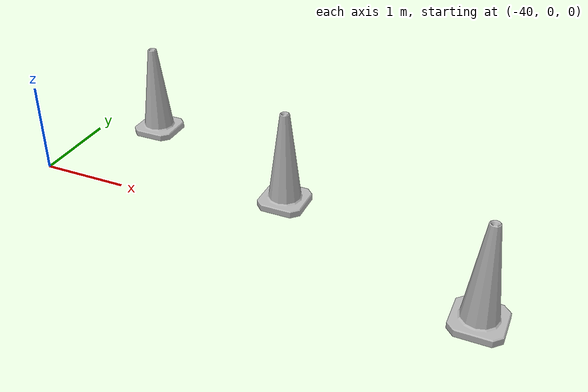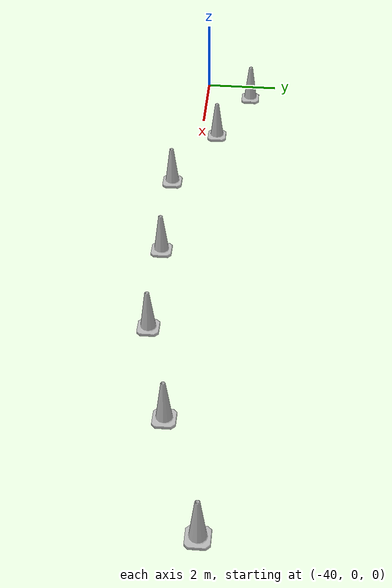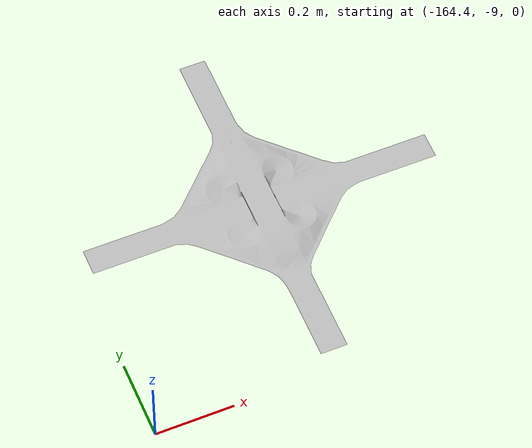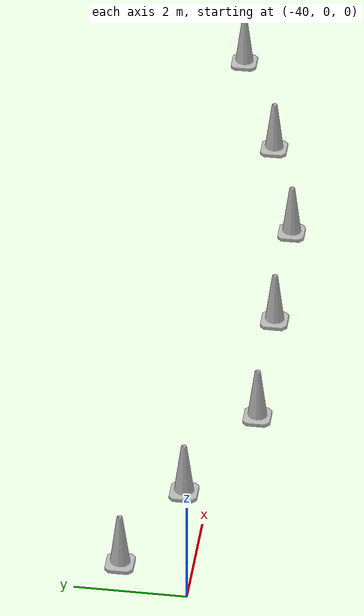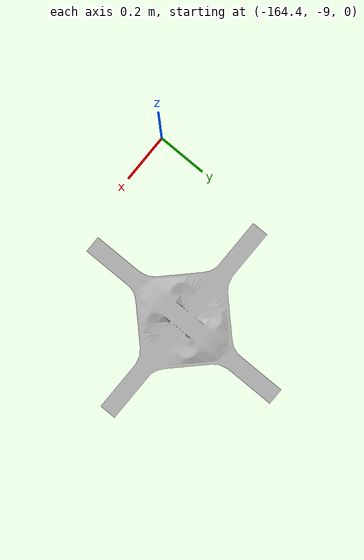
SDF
<sdf version="1.6">
 <world name="default">
  <light name="sun" type="directional">
   <pose>0 0 10 0 -0 0</pose>
   <diffuse>0.8 0.8 0.8 1</diffuse>
   <specular>0.2 0.2 0.2 1</specular>
   <attenuation>
    <range>1000</range>
    <constant>0.9</constant>
    <linear>0.01</linear>
    <quadratic>0.001</quadratic>
   </attenuation>
   <direction>-0.5 0.1 -0.9</direction>
  </light>
  <gravity>0 0 -9.8</gravity>
  <magnetic_field>6e-06 2.3e-05 -4.2e-05</magnetic_field>
  <atmosphere type="adiabatic"/>
  <physics name="default_physics" default="0" type="ode">
   <max_step_size>0.001</max_step_size>
   <real_time_factor>1</real_time_factor>
   <real_time_update_rate>1000</real_time_update_rate>
  </physics>
  <scene><ambient>0.4 0.4 0.4 1</ambient><background>0.7 0.7 0.7 1</background><shadows>1</shadows></scene>
  <spherical_coordinates>
   <surface_model>EARTH_WGS84</surface_model>
   <latitude_deg>0</latitude_deg>
   <longitude_deg>0</longitude_deg>
   <elevation>0</elevation>
   <heading_deg>0</heading_deg>
  </spherical_coordinates>
  <model name="heron_cones_use_case_0">
   <model name="Construction Cone">
    <link name="link">
     <collision name="collision">
      <geometry>
       <mesh><scale>10 10 10</scale><uri>model://construction_cone/meshes/construction_cone.dae</uri></mesh>
      </geometry>
     </collision>
     <visual name="visual">
      <geometry>
       <mesh><scale>10 10 10</scale><uri>model://construction_cone/meshes/construction_cone.dae</uri></mesh>
      </geometry>
     </visual>
     <inertial>
      <inertia><ixx>1</ixx><ixy>0</ixy><ixz>0</ixz><iyy>1</iyy><iyz>0</iyz><izz>1</izz></inertia>
      <mass>1</mass>
     </inertial>
    </link>
    <pose>24.7483 1.96075 0 0 -0 0</pose>
   </model>
   <model name="Construction Cone_0">
    <link name="link">
     <collision name="collision">
      <geometry>
       <mesh><scale>10 10 10</scale><uri>model://construction_cone/meshes/construction_cone.dae</uri></mesh>
      </geometry>
     </collision>
     <visual name="visual">
      <geometry>
       <mesh><scale>10 10 10</scale><uri>model://construction_cone/meshes/construction_cone.dae</uri></mesh>
      </geometry>
     </visual>
     <inertial>
      <inertia><ixx>1</ixx><ixy>0</ixy><ixz>0</ixz><iyy>1</iyy><iyz>0</iyz><izz>1</izz></inertia>
      <mass>1</mass>
     </inertial>
    </link>
    <pose>21.8619 1.00421 0 0 -0 0</pose>
   </model>
   <model name="Construction Cone_1">
    <link name="link">
     <collision name="collision">
      <geometry>
       <mesh><scale>10 10 10</scale><uri>model://construction_cone/meshes/construction_cone.dae</uri></mesh>
      </geometry>
     </collision>
     <visual name="visual">
      <geometry>
       <mesh><scale>10 10 10</scale><uri>model://construction_cone/meshes/construction_cone.dae</uri></mesh>
      </geometry>
     </visual>
     <inertial>
      <inertia><ixx>1</ixx><ixy>0</ixy><ixz>0</ixz><iyy>1</iyy><iyz>0</iyz><izz>1</izz></inertia>
      <mass>1</mass>
     </inertial>
    </link>
    <pose>19.1484 0.333307 0 0 -0 0</pose>
   </model>
   <model name="Construction Cone_2">
    <link name="link">
     <collision name="collision">
      <geometry>
       <mesh><scale>10 10 10</scale><uri>model://construction_cone/meshes/construction_cone.dae</uri></mesh>
      </geometry>
     </collision>
     <visual name="visual">
      <geometry>
       <mesh><scale>10 10 10</scale><uri>model://construction_cone/meshes/construction_cone.dae</uri></mesh>
      </geometry>
     </visual>
     <inertial>
      <inertia><ixx>1</ixx><ixy>0</ixy><ixz>0</ixz><iyy>1</iyy><iyz>0</iyz><izz>1</izz></inertia>
      <mass>1</mass>
     </inertial>
    </link>
    <pose>16.3463 0.316943 0 0 -0 0</pose>
   </model>
   <model name="Construction Cone_2_clone">
    <link name="link">
     <collision name="collision">
      <geometry>
       <mesh><scale>10 10 10</scale><uri>model://construction_cone/meshes/construction_cone.dae</uri></mesh>
      </geometry>
     </collision>
     <visual name="visual">
      <geometry>
       <mesh><scale>10 10 10</scale><uri>model://construction_cone/meshes/construction_cone.dae</uri></mesh>
      </geometry>
     </visual>
     <inertial>
      <inertia><ixx>1</ixx><ixy>0</ixy><ixz>0</ixz><iyy>1</iyy><iyz>0</iyz><izz>1</izz></inertia>
      <mass>1</mass>
     </inertial>
    </link>
    <pose>11.0985 1.30328 0 0 -0 0</pose>
   </model>
   <model name="Construction Cone_2_clone_0">
    <link name="link">
     <collision name="collision">
      <geometry>
       <mesh><scale>10 10 10</scale><uri>model://construction_cone/meshes/construction_cone.dae</uri></mesh>
      </geometry>
     </collision>
     <visual name="visual">
      <geometry>
       <mesh><scale>10 10 10</scale><uri>model://construction_cone/meshes/construction_cone.dae</uri></mesh>
      </geometry>
     </visual>
     <inertial>
      <inertia><ixx>1</ixx><ixy>0</ixy><ixz>0</ixz><iyy>1</iyy><iyz>0</iyz><izz>1</izz></inertia>
      <mass>1</mass>
     </inertial>
    </link>
    <pose>8.98705 2.14824 0 0 -0 0</pose>
   </model>
   <model name="Construction Cone_3">
    <link name="link">
     <collision name="collision">
      <geometry>
       <mesh><scale>10 10 10</scale><uri>model://construction_cone/meshes/construction_cone.dae</uri></mesh>
      </geometry>
     </collision>
     <visual name="visual">
      <geometry>
       <mesh><scale>10 10 10</scale><uri>model://construction_cone/meshes/construction_cone.dae</uri></mesh>
      </geometry>
     </visual>
     <inertial>
      <inertia><ixx>1</ixx><ixy>0</ixy><ixz>0</ixz><iyy>1</iyy><iyz>0</iyz><izz>1</izz></inertia>
      <mass>1</mass>
     </inertial>
    </link>
    <pose>13.4289 0.274514 0 0 -0 0</pose>
   </model>
   <model name="cloverleaf_interchange">
    <static>1</static>
    <link name="link">
     <collision name="collision">
      <geometry>
       <mesh>
        <uri>model://cloverleaf_interchange/meshes/cloverleaf.obj</uri>
        <scale>0.0254 0.0254 0.0254</scale>
       </mesh>
      </geometry>
     </collision>
     <visual name="visual">
      <geometry>
       <mesh>
        <uri>model://cloverleaf_interchange/meshes/cloverleaf.obj</uri>
        <scale>0.0254 0.0254 0.0254</scale>
       </mesh>
      </geometry>
     </visual>
    </link>
    <pose>-115.619 -7.34125 0 0 -0 0</pose>
   </model>
   <static>0</static>
   <pose>-48.2826 -0.862571 0 0 -0 0</pose>
  </model>
 </world>
</sdf>
